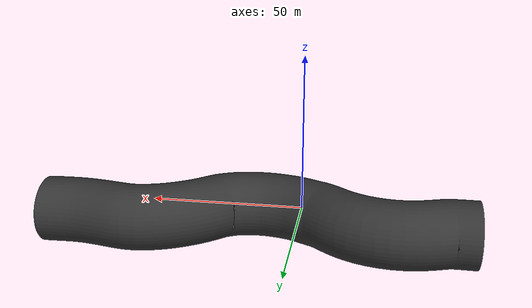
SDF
<?xml version="1.0" ?>
<sdf version="1.8">
  <model name="STunnel">
    <static>true</static>

    <link name="tunnel">

      <!-- Collision -->
      <collision name="collision">
        <geometry>
          <mesh>
            <uri>meshes/STunnel.stl</uri>
          </mesh>
        </geometry>
      </collision>

      <!-- Visual -->
      <visual name="visual">
        <geometry>
          <mesh>
            <uri>meshes/STunnel.stl</uri>
          </mesh>
        </geometry>
        <material>
            <ambient>0.2 0.2 0.2 1</ambient>
            <diffuse>0.2 0.2 0.2 1</diffuse>
        </material>
      </visual>

    </link>
  </model>
</sdf>
